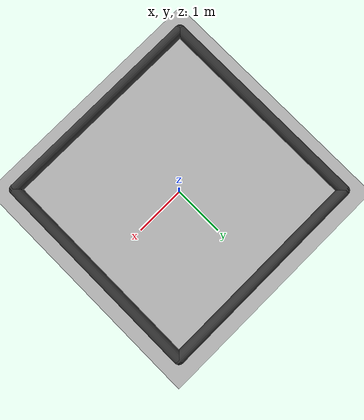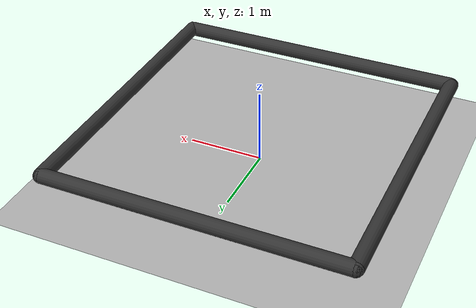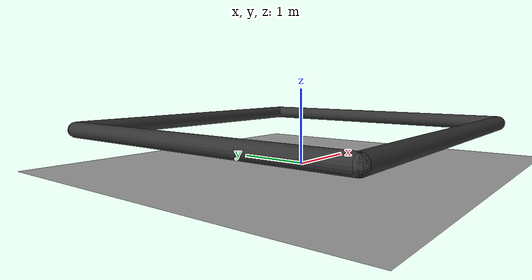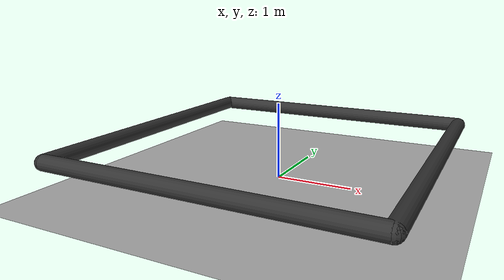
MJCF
<mujoco model="wrestling_ring">
  <compiler angle="degree"/>
  <option timestep="0.01" gravity="0 0 -9.81"/>
  <size nconmax="200"/>
  <default>
    <geom contype="1" conaffinity="1" rgba="0.7 0.7 0.7 1"/>
  </default>
  <asset>
    <material name="mat" rgba="0.7 0.7 0.7 1"/>
  </asset>
  <worldbody>
    <geom name="ring" type="plane" size="2.5 2.5 0.1" material="mat"/>
    <!--  Red spotlight from the left-front corner  -->
    <light pos="-2 -2 4" dir="2 2 -4" diffuse="1 0 0"/>
    <!--  Blue spotlight from the right-back corner  -->
    <light pos="2 2 4" dir="-2 -2 -4" diffuse="0 0 1"/>
    <geom name="topborder" type="capsule" fromto="-2.0 2.0 0.5 2.0 2.0 0.5" size="0.1" rgba="0.2 0.2 0.2 1"/>
    <geom name="rightborder" type="capsule" fromto="2.0 -2.0 0.5 2.0 2.0 0.5" size="0.1" rgba="0.2 0.2 0.2 1"/>
    <geom name="bottomborder" type="capsule" fromto="-2.0 -2.0 0.5 2.0 -2.0 0.5" size="0.1" rgba="0.2 0.2 0.2 1"/>
    <geom name="leftborder" type="capsule" fromto="-2.0 -2.0 0.5 -2.0 2.0 0.5" size="0.1" rgba="0.2 0.2 0.2 1"/>
  </worldbody>
</mujoco>
